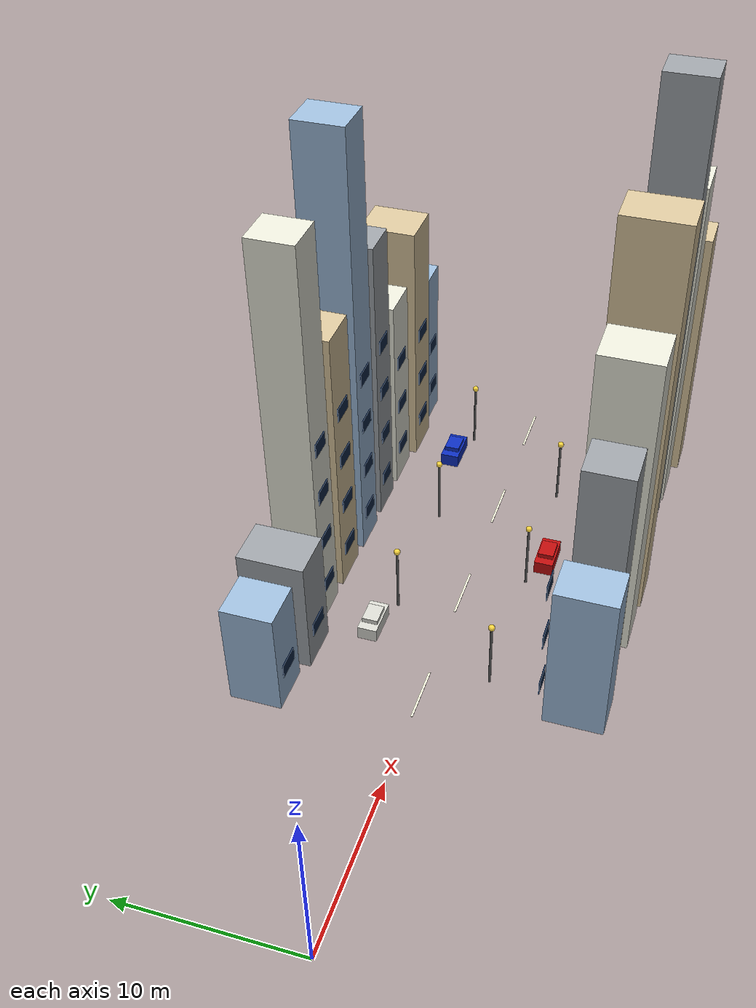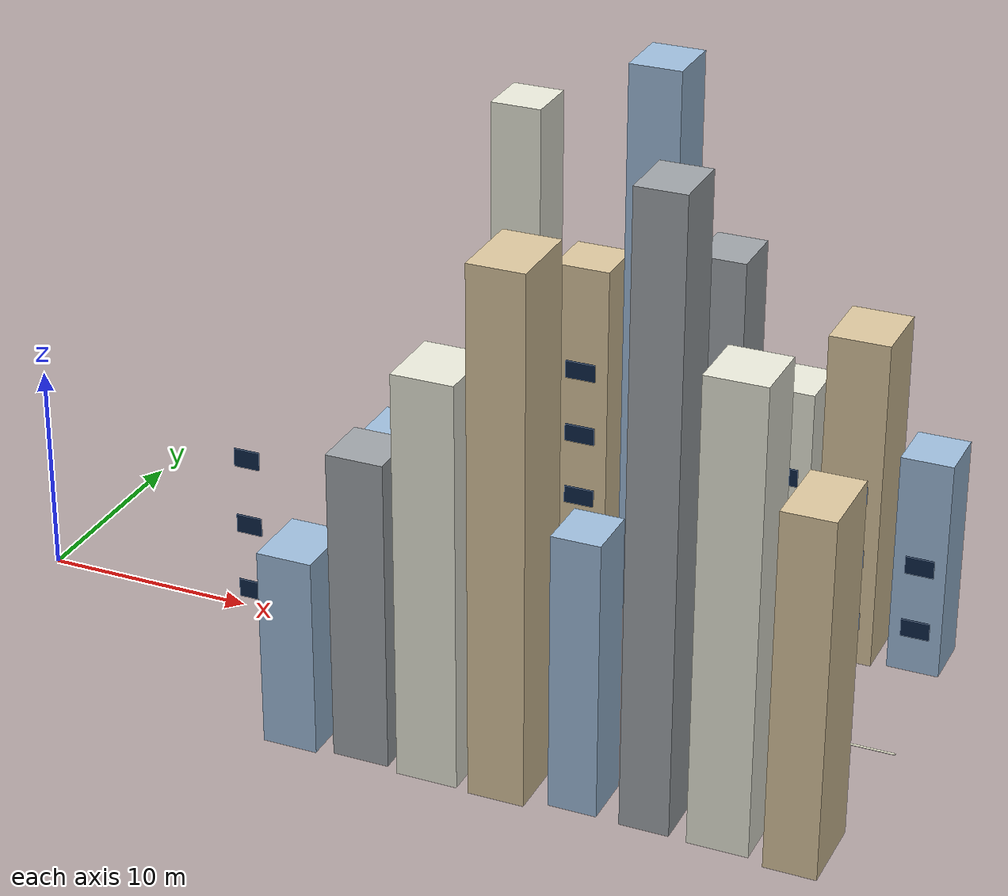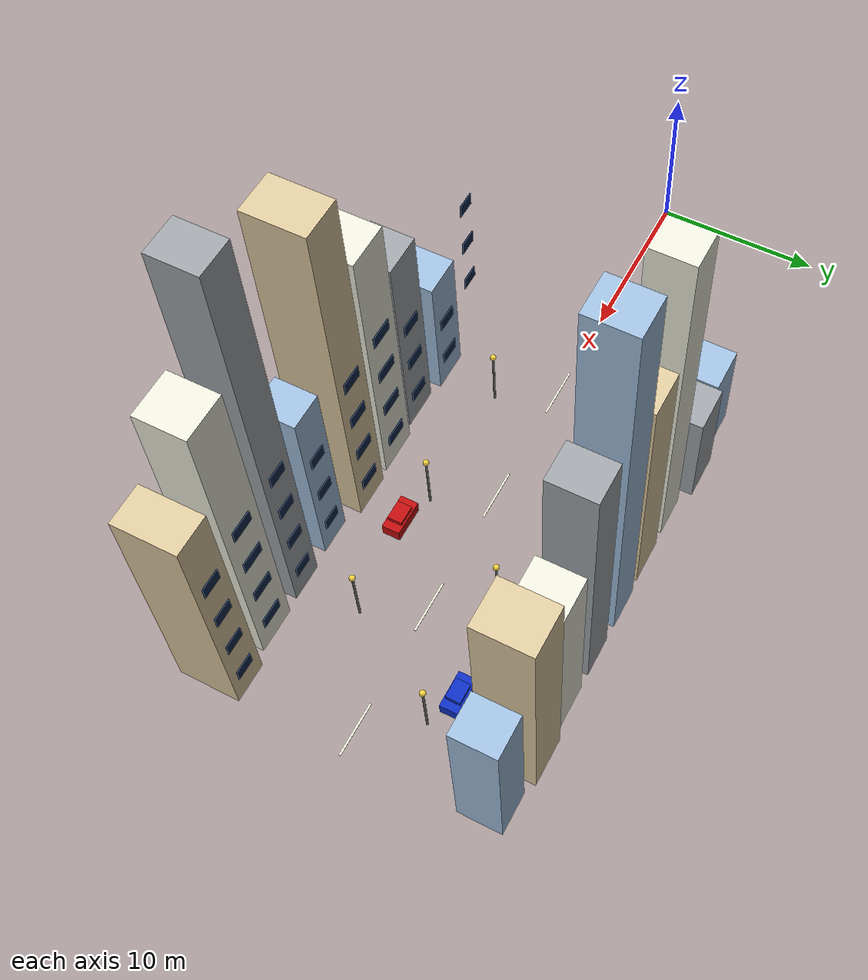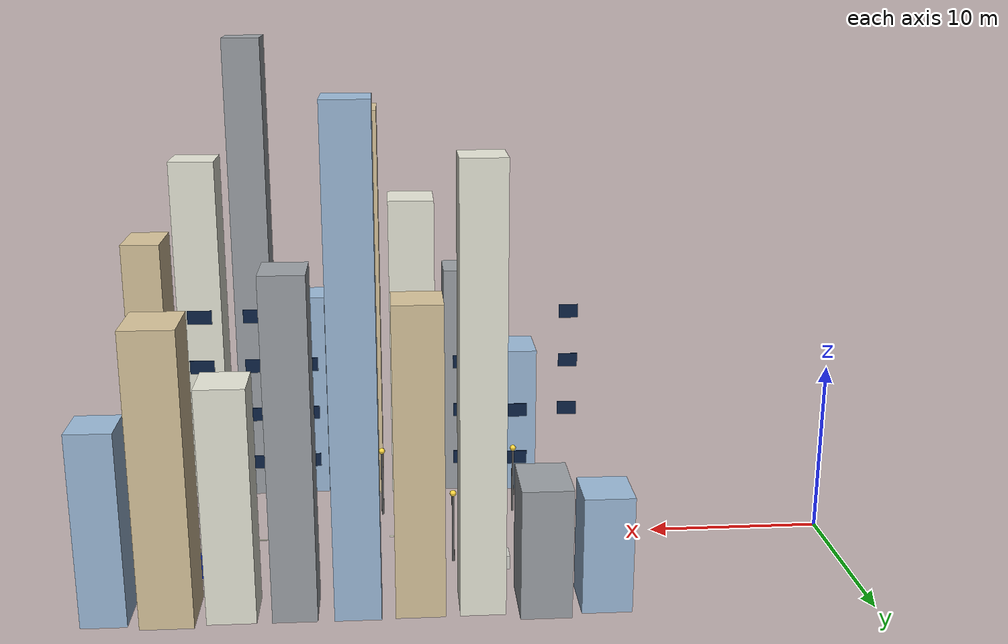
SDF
<sdf version="1.7">
 <world name="urban_street">
  <model name="white_lane_marking_07">
   <static>1</static>
   <pose>16 0 0.055 0 -0 0</pose>
   <link name="link">
    <collision name="collision"><geometry><box><size>3.2 0.12 0.02</size></box></geometry></collision>
    <visual name="visual">
     <geometry><box><size>3.2 0.12 0.02</size></box></geometry>
     <material>
      <ambient>0.95 0.95 0.85 1</ambient>
      <diffuse>0.95 0.95 0.85 1</diffuse>
      <specular>0.1 0.1 0.1 1</specular>
     </material>
    </visual>
   </link>
  </model>
  <model name="white_lane_marking_08">
   <static>1</static>
   <pose>24 0 0.055 0 -0 0</pose>
   <link name="link">
    <collision name="collision"><geometry><box><size>3.2 0.12 0.02</size></box></geometry></collision>
    <visual name="visual">
     <geometry><box><size>3.2 0.12 0.02</size></box></geometry>
     <material>
      <ambient>0.95 0.95 0.85 1</ambient>
      <diffuse>0.95 0.95 0.85 1</diffuse>
      <specular>0.1 0.1 0.1 1</specular>
     </material>
    </visual>
   </link>
  </model>
  <model name="white_lane_marking_09">
   <static>1</static>
   <pose>32 0 0.055 0 -0 0</pose>
   <link name="link">
    <collision name="collision"><geometry><box><size>3.2 0.12 0.02</size></box></geometry></collision>
    <visual name="visual">
     <geometry><box><size>3.2 0.12 0.02</size></box></geometry>
     <material>
      <ambient>0.95 0.95 0.85 1</ambient>
      <diffuse>0.95 0.95 0.85 1</diffuse>
      <specular>0.1 0.1 0.1 1</specular>
     </material>
    </visual>
   </link>
  </model>
  <model name="white_lane_marking_10">
   <static>1</static>
   <pose>40 0 0.055 0 -0 0</pose>
   <link name="link">
    <collision name="collision"><geometry><box><size>3.2 0.12 0.02</size></box></geometry></collision>
    <visual name="visual">
     <geometry><box><size>3.2 0.12 0.02</size></box></geometry>
     <material>
      <ambient>0.95 0.95 0.85 1</ambient>
      <diffuse>0.95 0.95 0.85 1</diffuse>
      <specular>0.1 0.1 0.1 1</specular>
     </material>
    </visual>
   </link>
  </model>
  <model name="building_facade_18_window_1">
   <static>1</static>
   <pose>14.25 -6.75 5.4 0 -0 0</pose>
   <link name="link">
    <collision name="collision"><geometry><box><size>1.19 0.05 0.85</size></box></geometry></collision>
    <visual name="visual">
     <geometry><box><size>1.19 0.05 0.85</size></box></geometry>
     <material>
      <ambient>0.05 0.14 0.28 1</ambient>
      <diffuse>0.05 0.14 0.28 1</diffuse>
      <specular>0.1 0.1 0.1 1</specular>
     </material>
    </visual>
   </link>
  </model>
  <model name="building_facade_18_window_2">
   <static>1</static>
   <pose>14.25 -6.75 8.6 0 -0 0</pose>
   <link name="link">
    <collision name="collision"><geometry><box><size>1.19 0.05 0.85</size></box></geometry></collision>
    <visual name="visual">
     <geometry><box><size>1.19 0.05 0.85</size></box></geometry>
     <material>
      <ambient>0.05 0.14 0.28 1</ambient>
      <diffuse>0.05 0.14 0.28 1</diffuse>
      <specular>0.1 0.1 0.1 1</specular>
     </material>
    </visual>
   </link>
  </model>
  <model name="building_facade_18_window_3">
   <static>1</static>
   <pose>14.25 -6.75 11.8 0 -0 0</pose>
   <link name="link">
    <collision name="collision"><geometry><box><size>1.19 0.05 0.85</size></box></geometry></collision>
    <visual name="visual">
     <geometry><box><size>1.19 0.05 0.85</size></box></geometry>
     <material>
      <ambient>0.05 0.14 0.28 1</ambient>
      <diffuse>0.05 0.14 0.28 1</diffuse>
      <specular>0.1 0.1 0.1 1</specular>
     </material>
    </visual>
   </link>
  </model>
  <model name="building_facade_19">
   <static>1</static>
   <pose>17.5 -8.2 4.64 0 -0 0</pose>
   <link name="link">
    <collision name="collision"><geometry><box><size>2.52 3.29 9.28</size></box></geometry></collision>
    <visual name="visual">
     <geometry><box><size>2.52 3.29 9.28</size></box></geometry>
     <material>
      <ambient>0.62 0.74 0.86 1</ambient>
      <diffuse>0.62 0.74 0.86 1</diffuse>
      <specular>0.1 0.1 0.1 1</specular>
     </material>
    </visual>
   </link>
  </model>
  <model name="building_facade_19_window_0">
   <static>1</static>
   <pose>17.5 -6.52 2.2 0 -0 0</pose>
   <link name="link">
    <collision name="collision"><geometry><box><size>1.39 0.05 0.85</size></box></geometry></collision>
    <visual name="visual">
     <geometry><box><size>1.39 0.05 0.85</size></box></geometry>
     <material>
      <ambient>0.05 0.14 0.28 1</ambient>
      <diffuse>0.05 0.14 0.28 1</diffuse>
      <specular>0.1 0.1 0.1 1</specular>
     </material>
    </visual>
   </link>
  </model>
  <model name="building_facade_19_window_1">
   <static>1</static>
   <pose>17.5 -6.52 5.4 0 -0 0</pose>
   <link name="link">
    <collision name="collision"><geometry><box><size>1.39 0.05 0.85</size></box></geometry></collision>
    <visual name="visual">
     <geometry><box><size>1.39 0.05 0.85</size></box></geometry>
     <material>
      <ambient>0.05 0.14 0.28 1</ambient>
      <diffuse>0.05 0.14 0.28 1</diffuse>
      <specular>0.1 0.1 0.1 1</specular>
     </material>
    </visual>
   </link>
  </model>
  <model name="building_facade_20">
   <static>1</static>
   <pose>20.75 -8.2 7.24 0 -0 0</pose>
   <link name="link">
    <collision name="collision"><geometry><box><size>2.58 2.71 14.49</size></box></geometry></collision>
    <visual name="visual">
     <geometry><box><size>2.58 2.71 14.49</size></box></geometry>
     <material>
      <ambient>0.62 0.64 0.66 1</ambient>
      <diffuse>0.62 0.64 0.66 1</diffuse>
      <specular>0.1 0.1 0.1 1</specular>
     </material>
    </visual>
   </link>
  </model>
  <model name="building_facade_20_window_0">
   <static>1</static>
   <pose>20.75 -6.81 2.2 0 -0 0</pose>
   <link name="link">
    <collision name="collision"><geometry><box><size>1.42 0.05 0.85</size></box></geometry></collision>
    <visual name="visual">
     <geometry><box><size>1.42 0.05 0.85</size></box></geometry>
     <material>
      <ambient>0.05 0.14 0.28 1</ambient>
      <diffuse>0.05 0.14 0.28 1</diffuse>
      <specular>0.1 0.1 0.1 1</specular>
     </material>
    </visual>
   </link>
  </model>
  <model name="building_facade_20_window_1">
   <static>1</static>
   <pose>20.75 -6.81 5.4 0 -0 0</pose>
   <link name="link">
    <collision name="collision"><geometry><box><size>1.42 0.05 0.85</size></box></geometry></collision>
    <visual name="visual">
     <geometry><box><size>1.42 0.05 0.85</size></box></geometry>
     <material>
      <ambient>0.05 0.14 0.28 1</ambient>
      <diffuse>0.05 0.14 0.28 1</diffuse>
      <specular>0.1 0.1 0.1 1</specular>
     </material>
    </visual>
   </link>
  </model>
  <model name="building_facade_20_window_2">
   <static>1</static>
   <pose>20.75 -6.81 8.6 0 -0 0</pose>
   <link name="link">
    <collision name="collision"><geometry><box><size>1.42 0.05 0.85</size></box></geometry></collision>
    <visual name="visual">
     <geometry><box><size>1.42 0.05 0.85</size></box></geometry>
     <material>
      <ambient>0.05 0.14 0.28 1</ambient>
      <diffuse>0.05 0.14 0.28 1</diffuse>
      <specular>0.1 0.1 0.1 1</specular>
     </material>
    </visual>
   </link>
  </model>
  <model name="building_facade_21">
   <static>1</static>
   <pose>24 -8.2 9.46 0 -0 0</pose>
   <link name="link">
    <collision name="collision"><geometry><box><size>2.79 3.33 18.92</size></box></geometry></collision>
    <visual name="visual">
     <geometry><box><size>2.79 3.33 18.92</size></box></geometry>
     <material>
      <ambient>0.92 0.92 0.86 1</ambient>
      <diffuse>0.92 0.92 0.86 1</diffuse>
      <specular>0.1 0.1 0.1 1</specular>
     </material>
    </visual>
   </link>
  </model>
  <model name="building_facade_21_window_0">
   <static>1</static>
   <pose>24 -6.5 2.2 0 -0 0</pose>
   <link name="link">
    <collision name="collision"><geometry><box><size>1.54 0.05 0.85</size></box></geometry></collision>
    <visual name="visual">
     <geometry><box><size>1.54 0.05 0.85</size></box></geometry>
     <material>
      <ambient>0.05 0.14 0.28 1</ambient>
      <diffuse>0.05 0.14 0.28 1</diffuse>
      <specular>0.1 0.1 0.1 1</specular>
     </material>
    </visual>
   </link>
  </model>
  <model name="building_facade_21_window_1">
   <static>1</static>
   <pose>24 -6.5 5.4 0 -0 0</pose>
   <link name="link">
    <collision name="collision"><geometry><box><size>1.54 0.05 0.85</size></box></geometry></collision>
    <visual name="visual">
     <geometry><box><size>1.54 0.05 0.85</size></box></geometry>
     <material>
      <ambient>0.05 0.14 0.28 1</ambient>
      <diffuse>0.05 0.14 0.28 1</diffuse>
      <specular>0.1 0.1 0.1 1</specular>
     </material>
    </visual>
   </link>
  </model>
  <model name="building_facade_21_window_2">
   <static>1</static>
   <pose>24 -6.5 8.6 0 -0 0</pose>
   <link name="link">
    <collision name="collision"><geometry><box><size>1.54 0.05 0.85</size></box></geometry></collision>
    <visual name="visual">
     <geometry><box><size>1.54 0.05 0.85</size></box></geometry>
     <material>
      <ambient>0.05 0.14 0.28 1</ambient>
      <diffuse>0.05 0.14 0.28 1</diffuse>
      <specular>0.1 0.1 0.1 1</specular>
     </material>
    </visual>
   </link>
  </model>
  <model name="building_facade_21_window_3">
   <static>1</static>
   <pose>24 -6.5 11.8 0 -0 0</pose>
   <link name="link">
    <collision name="collision"><geometry><box><size>1.54 0.05 0.85</size></box></geometry></collision>
    <visual name="visual">
     <geometry><box><size>1.54 0.05 0.85</size></box></geometry>
     <material>
      <ambient>0.05 0.14 0.28 1</ambient>
      <diffuse>0.05 0.14 0.28 1</diffuse>
      <specular>0.1 0.1 0.1 1</specular>
     </material>
    </visual>
   </link>
  </model>
  <model name="building_facade_22">
   <static>1</static>
   <pose>27.25 -8.2 12.2 0 -0 0</pose>
   <link name="link">
    <collision name="collision"><geometry><box><size>2.55 3.6 24.4</size></box></geometry></collision>
    <visual name="visual">
     <geometry><box><size>2.55 3.6 24.4</size></box></geometry>
     <material>
      <ambient>0.86 0.78 0.62 1</ambient>
      <diffuse>0.86 0.78 0.62 1</diffuse>
      <specular>0.1 0.1 0.1 1</specular>
     </material>
    </visual>
   </link>
  </model>
  <model name="building_facade_22_window_0">
   <static>1</static>
   <pose>27.25 -6.37 2.2 0 -0 0</pose>
   <link name="link">
    <collision name="collision"><geometry><box><size>1.4 0.05 0.85</size></box></geometry></collision>
    <visual name="visual">
     <geometry><box><size>1.4 0.05 0.85</size></box></geometry>
     <material>
      <ambient>0.05 0.14 0.28 1</ambient>
      <diffuse>0.05 0.14 0.28 1</diffuse>
      <specular>0.1 0.1 0.1 1</specular>
     </material>
    </visual>
   </link>
  </model>
  <model name="building_facade_22_window_1">
   <static>1</static>
   <pose>27.25 -6.37 5.4 0 -0 0</pose>
   <link name="link">
    <collision name="collision"><geometry><box><size>1.4 0.05 0.85</size></box></geometry></collision>
    <visual name="visual">
     <geometry><box><size>1.4 0.05 0.85</size></box></geometry>
     <material>
      <ambient>0.05 0.14 0.28 1</ambient>
      <diffuse>0.05 0.14 0.28 1</diffuse>
      <specular>0.1 0.1 0.1 1</specular>
     </material>
    </visual>
   </link>
  </model>
  <model name="building_facade_22_window_2">
   <static>1</static>
   <pose>27.25 -6.37 8.6 0 -0 0</pose>
   <link name="link">
    <collision name="collision"><geometry><box><size>1.4 0.05 0.85</size></box></geometry></collision>
    <visual name="visual">
     <geometry><box><size>1.4 0.05 0.85</size></box></geometry>
     <material>
      <ambient>0.05 0.14 0.28 1</ambient>
      <diffuse>0.05 0.14 0.28 1</diffuse>
      <specular>0.1 0.1 0.1 1</specular>
     </material>
    </visual>
   </link>
  </model>
  <model name="building_facade_22_window_3">
   <static>1</static>
   <pose>27.25 -6.37 11.8 0 -0 0</pose>
   <link name="link">
    <collision name="collision"><geometry><box><size>1.4 0.05 0.85</size></box></geometry></collision>
    <visual name="visual">
     <geometry><box><size>1.4 0.05 0.85</size></box></geometry>
     <material>
      <ambient>0.05 0.14 0.28 1</ambient>
      <diffuse>0.05 0.14 0.28 1</diffuse>
      <specular>0.1 0.1 0.1 1</specular>
     </material>
    </visual>
   </link>
  </model>
  <model name="building_facade_23">
   <static>1</static>
   <pose>30.5 -8.2 6.44 0 -0 0</pose>
   <link name="link">
    <collision name="collision"><geometry><box><size>2.18 2.54 12.89</size></box></geometry></collision>
    <visual name="visual">
     <geometry><box><size>2.18 2.54 12.89</size></box></geometry>
     <material>
      <ambient>0.62 0.74 0.86 1</ambient>
      <diffuse>0.62 0.74 0.86 1</diffuse>
      <specular>0.1 0.1 0.1 1</specular>
     </material>
    </visual>
   </link>
  </model>
  <model name="building_facade_23_window_0">
   <static>1</static>
   <pose>30.5 -6.9 2.2 0 -0 0</pose>
   <link name="link">
    <collision name="collision"><geometry><box><size>1.2 0.05 0.85</size></box></geometry></collision>
    <visual name="visual">
     <geometry><box><size>1.2 0.05 0.85</size></box></geometry>
     <material>
      <ambient>0.05 0.14 0.28 1</ambient>
      <diffuse>0.05 0.14 0.28 1</diffuse>
      <specular>0.1 0.1 0.1 1</specular>
     </material>
    </visual>
   </link>
  </model>
  <model name="building_facade_23_window_1">
   <static>1</static>
   <pose>30.5 -6.9 5.4 0 -0 0</pose>
   <link name="link">
    <collision name="collision"><geometry><box><size>1.2 0.05 0.85</size></box></geometry></collision>
    <visual name="visual">
     <geometry><box><size>1.2 0.05 0.85</size></box></geometry>
     <material>
      <ambient>0.05 0.14 0.28 1</ambient>
      <diffuse>0.05 0.14 0.28 1</diffuse>
      <specular>0.1 0.1 0.1 1</specular>
     </material>
    </visual>
   </link>
  </model>
  <model name="building_facade_23_window_2">
   <static>1</static>
   <pose>30.5 -6.9 8.6 0 -0 0</pose>
   <link name="link">
    <collision name="collision"><geometry><box><size>1.2 0.05 0.85</size></box></geometry></collision>
    <visual name="visual">
     <geometry><box><size>1.2 0.05 0.85</size></box></geometry>
     <material>
      <ambient>0.05 0.14 0.28 1</ambient>
      <diffuse>0.05 0.14 0.28 1</diffuse>
      <specular>0.1 0.1 0.1 1</specular>
     </material>
    </visual>
   </link>
  </model>
  <model name="building_facade_24">
   <static>1</static>
   <pose>33.75 -8.2 14.29 0 -0 0</pose>
   <link name="link">
    <collision name="collision"><geometry><box><size>2.21 2.77 28.57</size></box></geometry></collision>
    <visual name="visual">
     <geometry><box><size>2.21 2.77 28.57</size></box></geometry>
     <material>
      <ambient>0.62 0.64 0.66 1</ambient>
      <diffuse>0.62 0.64 0.66 1</diffuse>
      <specular>0.1 0.1 0.1 1</specular>
     </material>
    </visual>
   </link>
  </model>
  <model name="building_facade_24_window_0">
   <static>1</static>
   <pose>33.75 -6.78 2.2 0 -0 0</pose>
   <link name="link">
    <collision name="collision"><geometry><box><size>1.22 0.05 0.85</size></box></geometry></collision>
    <visual name="visual">
     <geometry><box><size>1.22 0.05 0.85</size></box></geometry>
     <material>
      <ambient>0.05 0.14 0.28 1</ambient>
      <diffuse>0.05 0.14 0.28 1</diffuse>
      <specular>0.1 0.1 0.1 1</specular>
     </material>
    </visual>
   </link>
  </model>
  <model name="building_facade_24_window_1">
   <static>1</static>
   <pose>33.75 -6.78 5.4 0 -0 0</pose>
   <link name="link">
    <collision name="collision"><geometry><box><size>1.22 0.05 0.85</size></box></geometry></collision>
    <visual name="visual">
     <geometry><box><size>1.22 0.05 0.85</size></box></geometry>
     <material>
      <ambient>0.05 0.14 0.28 1</ambient>
      <diffuse>0.05 0.14 0.28 1</diffuse>
      <specular>0.1 0.1 0.1 1</specular>
     </material>
    </visual>
   </link>
  </model>
  <model name="building_facade_24_window_2">
   <static>1</static>
   <pose>33.75 -6.78 8.6 0 -0 0</pose>
   <link name="link">
    <collision name="collision"><geometry><box><size>1.22 0.05 0.85</size></box></geometry></collision>
    <visual name="visual">
     <geometry><box><size>1.22 0.05 0.85</size></box></geometry>
     <material>
      <ambient>0.05 0.14 0.28 1</ambient>
      <diffuse>0.05 0.14 0.28 1</diffuse>
      <specular>0.1 0.1 0.1 1</specular>
     </material>
    </visual>
   </link>
  </model>
  <model name="building_facade_24_window_3">
   <static>1</static>
   <pose>33.75 -6.78 11.8 0 -0 0</pose>
   <link name="link">
    <collision name="collision"><geometry><box><size>1.22 0.05 0.85</size></box></geometry></collision>
    <visual name="visual">
     <geometry><box><size>1.22 0.05 0.85</size></box></geometry>
     <material>
      <ambient>0.05 0.14 0.28 1</ambient>
      <diffuse>0.05 0.14 0.28 1</diffuse>
      <specular>0.1 0.1 0.1 1</specular>
     </material>
    </visual>
   </link>
  </model>
  <model name="building_facade_25">
   <static>1</static>
   <pose>37 -8.2 10.69 0 -0 0</pose>
   <link name="link">
    <collision name="collision"><geometry><box><size>2.7 2.91 21.39</size></box></geometry></collision>
    <visual name="visual">
     <geometry><box><size>2.7 2.91 21.39</size></box></geometry>
     <material>
      <ambient>0.92 0.92 0.86 1</ambient>
      <diffuse>0.92 0.92 0.86 1</diffuse>
      <specular>0.1 0.1 0.1 1</specular>
     </material>
    </visual>
   </link>
  </model>
  <model name="building_facade_25_window_0">
   <static>1</static>
   <pose>37 -6.72 2.2 0 -0 0</pose>
   <link name="link">
    <collision name="collision"><geometry><box><size>1.49 0.05 0.85</size></box></geometry></collision>
    <visual name="visual">
     <geometry><box><size>1.49 0.05 0.85</size></box></geometry>
     <material>
      <ambient>0.05 0.14 0.28 1</ambient>
      <diffuse>0.05 0.14 0.28 1</diffuse>
      <specular>0.1 0.1 0.1 1</specular>
     </material>
    </visual>
   </link>
  </model>
  <model name="building_facade_25_window_1">
   <static>1</static>
   <pose>37 -6.72 5.4 0 -0 0</pose>
   <link name="link">
    <collision name="collision"><geometry><box><size>1.49 0.05 0.85</size></box></geometry></collision>
    <visual name="visual">
     <geometry><box><size>1.49 0.05 0.85</size></box></geometry>
     <material>
      <ambient>0.05 0.14 0.28 1</ambient>
      <diffuse>0.05 0.14 0.28 1</diffuse>
      <specular>0.1 0.1 0.1 1</specular>
     </material>
    </visual>
   </link>
  </model>
  <model name="building_facade_25_window_2">
   <static>1</static>
   <pose>37 -6.72 8.6 0 -0 0</pose>
   <link name="link">
    <collision name="collision"><geometry><box><size>1.49 0.05 0.85</size></box></geometry></collision>
    <visual name="visual">
     <geometry><box><size>1.49 0.05 0.85</size></box></geometry>
     <material>
      <ambient>0.05 0.14 0.28 1</ambient>
      <diffuse>0.05 0.14 0.28 1</diffuse>
      <specular>0.1 0.1 0.1 1</specular>
     </material>
    </visual>
   </link>
  </model>
  <model name="building_facade_25_window_3">
   <static>1</static>
   <pose>37 -6.72 11.8 0 -0 0</pose>
   <link name="link">
    <collision name="collision"><geometry><box><size>1.49 0.05 0.85</size></box></geometry></collision>
    <visual name="visual">
     <geometry><box><size>1.49 0.05 0.85</size></box></geometry>
     <material>
      <ambient>0.05 0.14 0.28 1</ambient>
      <diffuse>0.05 0.14 0.28 1</diffuse>
      <specular>0.1 0.1 0.1 1</specular>
     </material>
    </visual>
   </link>
  </model>
  <model name="building_facade_26">
   <static>1</static>
   <pose>40.25 -8.2 8.24 0 -0 0</pose>
   <link name="link">
    <collision name="collision"><geometry><box><size>2.32 3.69 16.47</size></box></geometry></collision>
    <visual name="visual">
     <geometry><box><size>2.32 3.69 16.47</size></box></geometry>
     <material>
      <ambient>0.86 0.78 0.62 1</ambient>
      <diffuse>0.86 0.78 0.62 1</diffuse>
      <specular>0.1 0.1 0.1 1</specular>
     </material>
    </visual>
   </link>
  </model>
  <model name="building_facade_26_window_0">
   <static>1</static>
   <pose>40.25 -6.33 2.2 0 -0 0</pose>
   <link name="link">
    <collision name="collision"><geometry><box><size>1.27 0.05 0.85</size></box></geometry></collision>
    <visual name="visual">
     <geometry><box><size>1.27 0.05 0.85</size></box></geometry>
     <material>
      <ambient>0.05 0.14 0.28 1</ambient>
      <diffuse>0.05 0.14 0.28 1</diffuse>
      <specular>0.1 0.1 0.1 1</specular>
     </material>
    </visual>
   </link>
  </model>
  <model name="building_facade_26_window_1">
   <static>1</static>
   <pose>40.25 -6.33 5.4 0 -0 0</pose>
   <link name="link">
    <collision name="collision"><geometry><box><size>1.27 0.05 0.85</size></box></geometry></collision>
    <visual name="visual">
     <geometry><box><size>1.27 0.05 0.85</size></box></geometry>
     <material>
      <ambient>0.05 0.14 0.28 1</ambient>
      <diffuse>0.05 0.14 0.28 1</diffuse>
      <specular>0.1 0.1 0.1 1</specular>
     </material>
    </visual>
   </link>
  </model>
  <model name="building_facade_26_window_2">
   <static>1</static>
   <pose>40.25 -6.33 8.6 0 -0 0</pose>
   <link name="link">
    <collision name="collision"><geometry><box><size>1.27 0.05 0.85</size></box></geometry></collision>
    <visual name="visual">
     <geometry><box><size>1.27 0.05 0.85</size></box></geometry>
     <material>
      <ambient>0.05 0.14 0.28 1</ambient>
      <diffuse>0.05 0.14 0.28 1</diffuse>
      <specular>0.1 0.1 0.1 1</specular>
     </material>
    </visual>
   </link>
  </model>
  <model name="building_facade_26_window_3">
   <static>1</static>
   <pose>40.25 -6.33 11.8 0 -0 0</pose>
   <link name="link">
    <collision name="collision"><geometry><box><size>1.27 0.05 0.85</size></box></geometry></collision>
    <visual name="visual">
     <geometry><box><size>1.27 0.05 0.85</size></box></geometry>
     <material>
      <ambient>0.05 0.14 0.28 1</ambient>
      <diffuse>0.05 0.14 0.28 1</diffuse>
      <specular>0.1 0.1 0.1 1</specular>
     </material>
    </visual>
   </link>
  </model>
  <model name="building_facade_44">
   <static>1</static>
   <pose>14.25 8.2 3.22 0 -0 0</pose>
   <link name="link">
    <collision name="collision"><geometry><box><size>2.67 2.9 6.45</size></box></geometry></collision>
    <visual name="visual">
     <geometry><box><size>2.67 2.9 6.45</size></box></geometry>
     <material>
      <ambient>0.62 0.74 0.86 1</ambient>
      <diffuse>0.62 0.74 0.86 1</diffuse>
      <specular>0.1 0.1 0.1 1</specular>
     </material>
    </visual>
   </link>
  </model>
  <model name="building_facade_44_window_0">
   <static>1</static>
   <pose>14.25 6.72 2.2 0 -0 0</pose>
   <link name="link">
    <collision name="collision"><geometry><box><size>1.47 0.05 0.85</size></box></geometry></collision>
    <visual name="visual">
     <geometry><box><size>1.47 0.05 0.85</size></box></geometry>
     <material>
      <ambient>0.05 0.14 0.28 1</ambient>
      <diffuse>0.05 0.14 0.28 1</diffuse>
      <specular>0.1 0.1 0.1 1</specular>
     </material>
    </visual>
   </link>
  </model>
  <model name="building_facade_45">
   <static>1</static>
   <pose>17.5 8.2 3.57 0 -0 0</pose>
   <link name="link">
    <collision name="collision"><geometry><box><size>2.7 3.73 7.14</size></box></geometry></collision>
    <visual name="visual">
     <geometry><box><size>2.7 3.73 7.14</size></box></geometry>
     <material>
      <ambient>0.62 0.64 0.66 1</ambient>
      <diffuse>0.62 0.64 0.66 1</diffuse>
      <specular>0.1 0.1 0.1 1</specular>
     </material>
    </visual>
   </link>
  </model>
  <model name="building_facade_45_window_0">
   <static>1</static>
   <pose>17.5 6.3 2.2 0 -0 0</pose>
   <link name="link">
    <collision name="collision"><geometry><box><size>1.49 0.05 0.85</size></box></geometry></collision>
    <visual name="visual">
     <geometry><box><size>1.49 0.05 0.85</size></box></geometry>
     <material>
      <ambient>0.05 0.14 0.28 1</ambient>
      <diffuse>0.05 0.14 0.28 1</diffuse>
      <specular>0.1 0.1 0.1 1</specular>
     </material>
    </visual>
   </link>
  </model>
  <model name="building_facade_46">
   <static>1</static>
   <pose>20.75 8.2 12.01 0 -0 0</pose>
   <link name="link">
    <collision name="collision"><geometry><box><size>2.39 2.59 24.02</size></box></geometry></collision>
    <visual name="visual">
     <geometry><box><size>2.39 2.59 24.02</size></box></geometry>
     <material>
      <ambient>0.92 0.92 0.86 1</ambient>
      <diffuse>0.92 0.92 0.86 1</diffuse>
      <specular>0.1 0.1 0.1 1</specular>
     </material>
    </visual>
   </link>
  </model>
  <model name="building_facade_46_window_0">
   <static>1</static>
   <pose>20.75 6.88 2.2 0 -0 0</pose>
   <link name="link">
    <collision name="collision"><geometry><box><size>1.31 0.05 0.85</size></box></geometry></collision>
    <visual name="visual">
     <geometry><box><size>1.31 0.05 0.85</size></box></geometry>
     <material>
      <ambient>0.05 0.14 0.28 1</ambient>
      <diffuse>0.05 0.14 0.28 1</diffuse>
      <specular>0.1 0.1 0.1 1</specular>
     </material>
    </visual>
   </link>
  </model>
  <model name="building_facade_46_window_1">
   <static>1</static>
   <pose>20.75 6.88 5.4 0 -0 0</pose>
   <link name="link">
    <collision name="collision"><geometry><box><size>1.31 0.05 0.85</size></box></geometry></collision>
    <visual name="visual">
     <geometry><box><size>1.31 0.05 0.85</size></box></geometry>
     <material>
      <ambient>0.05 0.14 0.28 1</ambient>
      <diffuse>0.05 0.14 0.28 1</diffuse>
      <specular>0.1 0.1 0.1 1</specular>
     </material>
    </visual>
   </link>
  </model>
  <model name="building_facade_46_window_2">
   <static>1</static>
   <pose>20.75 6.88 8.6 0 -0 0</pose>
   <link name="link">
    <collision name="collision"><geometry><box><size>1.31 0.05 0.85</size></box></geometry></collision>
    <visual name="visual">
     <geometry><box><size>1.31 0.05 0.85</size></box></geometry>
     <material>
      <ambient>0.05 0.14 0.28 1</ambient>
      <diffuse>0.05 0.14 0.28 1</diffuse>
      <specular>0.1 0.1 0.1 1</specular>
     </material>
    </visual>
   </link>
  </model>
  <model name="building_facade_46_window_3">
   <static>1</static>
   <pose>20.75 6.88 11.8 0 -0 0</pose>
   <link name="link">
    <collision name="collision"><geometry><box><size>1.31 0.05 0.85</size></box></geometry></collision>
    <visual name="visual">
     <geometry><box><size>1.31 0.05 0.85</size></box></geometry>
     <material>
      <ambient>0.05 0.14 0.28 1</ambient>
      <diffuse>0.05 0.14 0.28 1</diffuse>
      <specular>0.1 0.1 0.1 1</specular>
     </material>
    </visual>
   </link>
  </model>
  <model name="building_facade_47">
   <static>1</static>
   <pose>24 8.2 8.44 0 -0 0</pose>
   <link name="link">
    <collision name="collision"><geometry><box><size>2.61 2.67 16.88</size></box></geometry></collision>
    <visual name="visual">
     <geometry><box><size>2.61 2.67 16.88</size></box></geometry>
     <material>
      <ambient>0.86 0.78 0.62 1</ambient>
      <diffuse>0.86 0.78 0.62 1</diffuse>
      <specular>0.1 0.1 0.1 1</specular>
     </material>
    </visual>
   </link>
  </model>
  <model name="building_facade_47_window_0">
   <static>1</static>
   <pose>24 6.84 2.2 0 -0 0</pose>
   <link name="link">
    <collision name="collision"><geometry><box><size>1.44 0.05 0.85</size></box></geometry></collision>
    <visual name="visual">
     <geometry><box><size>1.44 0.05 0.85</size></box></geometry>
     <material>
      <ambient>0.05 0.14 0.28 1</ambient>
      <diffuse>0.05 0.14 0.28 1</diffuse>
      <specular>0.1 0.1 0.1 1</specular>
     </material>
    </visual>
   </link>
  </model>
  <model name="building_facade_47_window_1">
   <static>1</static>
   <pose>24 6.84 5.4 0 -0 0</pose>
   <link name="link">
    <collision name="collision"><geometry><box><size>1.44 0.05 0.85</size></box></geometry></collision>
    <visual name="visual">
     <geometry><box><size>1.44 0.05 0.85</size></box></geometry>
     <material>
      <ambient>0.05 0.14 0.28 1</ambient>
      <diffuse>0.05 0.14 0.28 1</diffuse>
      <specular>0.1 0.1 0.1 1</specular>
     </material>
    </visual>
   </link>
  </model>
  <model name="building_facade_47_window_2">
   <static>1</static>
   <pose>24 6.84 8.6 0 -0 0</pose>
   <link name="link">
    <collision name="collision"><geometry><box><size>1.44 0.05 0.85</size></box></geometry></collision>
    <visual name="visual">
     <geometry><box><size>1.44 0.05 0.85</size></box></geometry>
     <material>
      <ambient>0.05 0.14 0.28 1</ambient>
      <diffuse>0.05 0.14 0.28 1</diffuse>
      <specular>0.1 0.1 0.1 1</specular>
     </material>
    </visual>
   </link>
  </model>
  <model name="building_facade_47_window_3">
   <static>1</static>
   <pose>24 6.84 11.8 0 -0 0</pose>
   <link name="link">
    <collision name="collision"><geometry><box><size>1.44 0.05 0.85</size></box></geometry></collision>
    <visual name="visual">
     <geometry><box><size>1.44 0.05 0.85</size></box></geometry>
     <material>
      <ambient>0.05 0.14 0.28 1</ambient>
      <diffuse>0.05 0.14 0.28 1</diffuse>
      <specular>0.1 0.1 0.1 1</specular>
     </material>
    </visual>
   </link>
  </model>
  <model name="building_facade_48">
   <static>1</static>
   <pose>27.25 8.2 13.41 0 -0 0</pose>
   <link name="link">
    <collision name="collision"><geometry><box><size>2.44 2.84 26.81</size></box></geometry></collision>
    <visual name="visual">
     <geometry><box><size>2.44 2.84 26.81</size></box></geometry>
     <material>
      <ambient>0.62 0.74 0.86 1</ambient>
      <diffuse>0.62 0.74 0.86 1</diffuse>
      <specular>0.1 0.1 0.1 1</specular>
     </material>
    </visual>
   </link>
  </model>
  <model name="building_facade_48_window_0">
   <static>1</static>
   <pose>27.25 6.75 2.2 0 -0 0</pose>
   <link name="link">
    <collision name="collision"><geometry><box><size>1.34 0.05 0.85</size></box></geometry></collision>
    <visual name="visual">
     <geometry><box><size>1.34 0.05 0.85</size></box></geometry>
     <material>
      <ambient>0.05 0.14 0.28 1</ambient>
      <diffuse>0.05 0.14 0.28 1</diffuse>
      <specular>0.1 0.1 0.1 1</specular>
     </material>
    </visual>
   </link>
  </model>
  <model name="building_facade_48_window_1">
   <static>1</static>
   <pose>27.25 6.75 5.4 0 -0 0</pose>
   <link name="link">
    <collision name="collision"><geometry><box><size>1.34 0.05 0.85</size></box></geometry></collision>
    <visual name="visual">
     <geometry><box><size>1.34 0.05 0.85</size></box></geometry>
     <material>
      <ambient>0.05 0.14 0.28 1</ambient>
      <diffuse>0.05 0.14 0.28 1</diffuse>
      <specular>0.1 0.1 0.1 1</specular>
     </material>
    </visual>
   </link>
  </model>
  <model name="building_facade_48_window_2">
   <static>1</static>
   <pose>27.25 6.75 8.6 0 -0 0</pose>
   <link name="link">
    <collision name="collision"><geometry><box><size>1.34 0.05 0.85</size></box></geometry></collision>
    <visual name="visual">
     <geometry><box><size>1.34 0.05 0.85</size></box></geometry>
     <material>
      <ambient>0.05 0.14 0.28 1</ambient>
      <diffuse>0.05 0.14 0.28 1</diffuse>
      <specular>0.1 0.1 0.1 1</specular>
     </material>
    </visual>
   </link>
  </model>
  <model name="building_facade_48_window_3">
   <static>1</static>
   <pose>27.25 6.75 11.8 0 -0 0</pose>
   <link name="link">
    <collision name="collision"><geometry><box><size>1.34 0.05 0.85</size></box></geometry></collision>
    <visual name="visual">
     <geometry><box><size>1.34 0.05 0.85</size></box></geometry>
     <material>
      <ambient>0.05 0.14 0.28 1</ambient>
      <diffuse>0.05 0.14 0.28 1</diffuse>
      <specular>0.1 0.1 0.1 1</specular>
     </material>
    </visual>
   </link>
  </model>
  <model name="building_facade_49">
   <static>1</static>
   <pose>30.5 8.2 9.24 0 -0 0</pose>
   <link name="link">
    <collision name="collision"><geometry><box><size>2.34 2.78 18.48</size></box></geometry></collision>
    <visual name="visual">
     <geometry><box><size>2.34 2.78 18.48</size></box></geometry>
     <material>
      <ambient>0.62 0.64 0.66 1</ambient>
      <diffuse>0.62 0.64 0.66 1</diffuse>
      <specular>0.1 0.1 0.1 1</specular>
     </material>
    </visual>
   </link>
  </model>
  <model name="building_facade_49_window_0">
   <static>1</static>
   <pose>30.5 6.78 2.2 0 -0 0</pose>
   <link name="link">
    <collision name="collision"><geometry><box><size>1.29 0.05 0.85</size></box></geometry></collision>
    <visual name="visual">
     <geometry><box><size>1.29 0.05 0.85</size></box></geometry>
     <material>
      <ambient>0.05 0.14 0.28 1</ambient>
      <diffuse>0.05 0.14 0.28 1</diffuse>
      <specular>0.1 0.1 0.1 1</specular>
     </material>
    </visual>
   </link>
  </model>
  <model name="building_facade_49_window_1">
   <static>1</static>
   <pose>30.5 6.78 5.4 0 -0 0</pose>
   <link name="link">
    <collision name="collision"><geometry><box><size>1.29 0.05 0.85</size></box></geometry></collision>
    <visual name="visual">
     <geometry><box><size>1.29 0.05 0.85</size></box></geometry>
     <material>
      <ambient>0.05 0.14 0.28 1</ambient>
      <diffuse>0.05 0.14 0.28 1</diffuse>
      <specular>0.1 0.1 0.1 1</specular>
     </material>
    </visual>
   </link>
  </model>
  <model name="building_facade_49_window_2">
   <static>1</static>
   <pose>30.5 6.78 8.6 0 -0 0</pose>
   <link name="link">
    <collision name="collision"><geometry><box><size>1.29 0.05 0.85</size></box></geometry></collision>
    <visual name="visual">
     <geometry><box><size>1.29 0.05 0.85</size></box></geometry>
     <material>
      <ambient>0.05 0.14 0.28 1</ambient>
      <diffuse>0.05 0.14 0.28 1</diffuse>
      <specular>0.1 0.1 0.1 1</specular>
     </material>
    </visual>
   </link>
  </model>
  <model name="building_facade_49_window_3">
   <static>1</static>
   <pose>30.5 6.78 11.8 0 -0 0</pose>
   <link name="link">
    <collision name="collision"><geometry><box><size>1.29 0.05 0.85</size></box></geometry></collision>
    <visual name="visual">
     <geometry><box><size>1.29 0.05 0.85</size></box></geometry>
     <material>
      <ambient>0.05 0.14 0.28 1</ambient>
      <diffuse>0.05 0.14 0.28 1</diffuse>
      <specular>0.1 0.1 0.1 1</specular>
     </material>
    </visual>
   </link>
  </model>
  <model name="building_facade_50">
   <static>1</static>
   <pose>33.75 8.2 6.4 0 -0 0</pose>
   <link name="link">
    <collision name="collision"><geometry><box><size>2.58 2.76 12.79</size></box></geometry></collision>
    <visual name="visual">
     <geometry><box><size>2.58 2.76 12.79</size></box></geometry>
     <material>
      <ambient>0.92 0.92 0.86 1</ambient>
      <diffuse>0.92 0.92 0.86 1</diffuse>
      <specular>0.1 0.1 0.1 1</specular>
     </material>
    </visual>
   </link>
  </model>
  <model name="building_facade_50_window_0">
   <static>1</static>
   <pose>33.75 6.79 2.2 0 -0 0</pose>
   <link name="link">
    <collision name="collision"><geometry><box><size>1.42 0.05 0.85</size></box></geometry></collision>
    <visual name="visual">
     <geometry><box><size>1.42 0.05 0.85</size></box></geometry>
     <material>
      <ambient>0.05 0.14 0.28 1</ambient>
      <diffuse>0.05 0.14 0.28 1</diffuse>
      <specular>0.1 0.1 0.1 1</specular>
     </material>
    </visual>
   </link>
  </model>
  <model name="building_facade_50_window_1">
   <static>1</static>
   <pose>33.75 6.79 5.4 0 -0 0</pose>
   <link name="link">
    <collision name="collision"><geometry><box><size>1.42 0.05 0.85</size></box></geometry></collision>
    <visual name="visual">
     <geometry><box><size>1.42 0.05 0.85</size></box></geometry>
     <material>
      <ambient>0.05 0.14 0.28 1</ambient>
      <diffuse>0.05 0.14 0.28 1</diffuse>
      <specular>0.1 0.1 0.1 1</specular>
     </material>
    </visual>
   </link>
  </model>
  <model name="building_facade_50_window_2">
   <static>1</static>
   <pose>33.75 6.79 8.6 0 -0 0</pose>
   <link name="link">
    <collision name="collision"><geometry><box><size>1.42 0.05 0.85</size></box></geometry></collision>
    <visual name="visual">
     <geometry><box><size>1.42 0.05 0.85</size></box></geometry>
     <material>
      <ambient>0.05 0.14 0.28 1</ambient>
      <diffuse>0.05 0.14 0.28 1</diffuse>
      <specular>0.1 0.1 0.1 1</specular>
     </material>
    </visual>
   </link>
  </model>
  <model name="building_facade_51">
   <static>1</static>
   <pose>37 8.2 7.98 0 -0 0</pose>
   <link name="link">
    <collision name="collision"><geometry><box><size>2.8 3.34 15.95</size></box></geometry></collision>
    <visual name="visual">
     <geometry><box><size>2.8 3.34 15.95</size></box></geometry>
     <material>
      <ambient>0.86 0.78 0.62 1</ambient>
      <diffuse>0.86 0.78 0.62 1</diffuse>
      <specular>0.1 0.1 0.1 1</specular>
     </material>
    </visual>
   </link>
  </model>
  <model name="building_facade_51_window_0">
   <static>1</static>
   <pose>37 6.5 2.2 0 -0 0</pose>
   <link name="link">
    <collision name="collision"><geometry><box><size>1.54 0.05 0.85</size></box></geometry></collision>
    <visual name="visual">
     <geometry><box><size>1.54 0.05 0.85</size></box></geometry>
     <material>
      <ambient>0.05 0.14 0.28 1</ambient>
      <diffuse>0.05 0.14 0.28 1</diffuse>
      <specular>0.1 0.1 0.1 1</specular>
     </material>
    </visual>
   </link>
  </model>
  <model name="building_facade_51_window_1">
   <static>1</static>
   <pose>37 6.5 5.4 0 -0 0</pose>
   <link name="link">
    <collision name="collision"><geometry><box><size>1.54 0.05 0.85</size></box></geometry></collision>
    <visual name="visual">
     <geometry><box><size>1.54 0.05 0.85</size></box></geometry>
     <material>
      <ambient>0.05 0.14 0.28 1</ambient>
      <diffuse>0.05 0.14 0.28 1</diffuse>
      <specular>0.1 0.1 0.1 1</specular>
     </material>
    </visual>
   </link>
  </model>
  <model name="building_facade_51_window_2">
   <static>1</static>
   <pose>37 6.5 8.6 0 -0 0</pose>
   <link name="link">
    <collision name="collision"><geometry><box><size>1.54 0.05 0.85</size></box></geometry></collision>
    <visual name="visual">
     <geometry><box><size>1.54 0.05 0.85</size></box></geometry>
     <material>
      <ambient>0.05 0.14 0.28 1</ambient>
      <diffuse>0.05 0.14 0.28 1</diffuse>
      <specular>0.1 0.1 0.1 1</specular>
     </material>
    </visual>
   </link>
  </model>
  <model name="building_facade_52">
   <static>1</static>
   <pose>40.25 8.2 5.31 0 -0 0</pose>
   <link name="link">
    <collision name="collision"><geometry><box><size>2.41 2.66 10.62</size></box></geometry></collision>
    <visual name="visual">
     <geometry><box><size>2.41 2.66 10.62</size></box></geometry>
     <material>
      <ambient>0.62 0.74 0.86 1</ambient>
      <diffuse>0.62 0.74 0.86 1</diffuse>
      <specular>0.1 0.1 0.1 1</specular>
     </material>
    </visual>
   </link>
  </model>
  <model name="building_facade_52_window_0">
   <static>1</static>
   <pose>40.25 6.84 2.2 0 -0 0</pose>
   <link name="link">
    <collision name="collision"><geometry><box><size>1.33 0.05 0.85</size></box></geometry></collision>
    <visual name="visual">
     <geometry><box><size>1.33 0.05 0.85</size></box></geometry>
     <material>
      <ambient>0.05 0.14 0.28 1</ambient>
      <diffuse>0.05 0.14 0.28 1</diffuse>
      <specular>0.1 0.1 0.1 1</specular>
     </material>
    </visual>
   </link>
  </model>
  <model name="building_facade_52_window_1">
   <static>1</static>
   <pose>40.25 6.84 5.4 0 -0 0</pose>
   <link name="link">
    <collision name="collision"><geometry><box><size>1.33 0.05 0.85</size></box></geometry></collision>
    <visual name="visual">
     <geometry><box><size>1.33 0.05 0.85</size></box></geometry>
     <material>
      <ambient>0.05 0.14 0.28 1</ambient>
      <diffuse>0.05 0.14 0.28 1</diffuse>
      <specular>0.1 0.1 0.1 1</specular>
     </material>
    </visual>
   </link>
  </model>
  <model name="street_pole_14">
   <static>1</static>
   <pose>18 -3.25 2 0 -0 0</pose>
   <link name="link">
    <collision name="collision">
     <geometry><cylinder><radius>0.07</radius><length>4</length></cylinder></geometry>
    </collision>
    <visual name="visual">
     <geometry><cylinder><radius>0.07</radius><length>4</length></cylinder></geometry>
     <material>
      <ambient>0.35 0.35 0.35 1</ambient>
      <diffuse>0.35 0.35 0.35 1</diffuse>
      <specular>0.1 0.1 0.1 1</specular>
     </material>
    </visual>
   </link>
  </model>
  <model name="lamp_head_14">
   <static>1</static>
   <pose>18 -3.25 4.15 0 -0 0</pose>
   <link name="link">
    <visual name="visual">
     <geometry><sphere><radius>0.18</radius></sphere></geometry>
     <material>
      <ambient>1 0.85 0.25 1</ambient>
      <diffuse>1 0.85 0.25 1</diffuse>
      <specular>0.1 0.1 0.1 1</specular>
     </material>
    </visual>
   </link>
  </model>
  <model name="street_pole_15">
   <static>1</static>
   <pose>22 3.25 2 0 -0 0</pose>
   <link name="link">
    <collision name="collision">
     <geometry><cylinder><radius>0.07</radius><length>4</length></cylinder></geometry>
    </collision>
    <visual name="visual">
     <geometry><cylinder><radius>0.07</radius><length>4</length></cylinder></geometry>
     <material>
      <ambient>0.35 0.35 0.35 1</ambient>
      <diffuse>0.35 0.35 0.35 1</diffuse>
      <specular>0.1 0.1 0.1 1</specular>
     </material>
    </visual>
   </link>
  </model>
  <model name="lamp_head_15">
   <static>1</static>
   <pose>22 3.25 4.15 0 -0 0</pose>
   <link name="link">
    <visual name="visual">
     <geometry><sphere><radius>0.18</radius></sphere></geometry>
     <material>
      <ambient>1 0.85 0.25 1</ambient>
      <diffuse>1 0.85 0.25 1</diffuse>
      <specular>0.1 0.1 0.1 1</specular>
     </material>
    </visual>
   </link>
  </model>
  <model name="street_pole_16">
   <static>1</static>
   <pose>26 -3.25 2 0 -0 0</pose>
   <link name="link">
    <collision name="collision">
     <geometry><cylinder><radius>0.07</radius><length>4</length></cylinder></geometry>
    </collision>
    <visual name="visual">
     <geometry><cylinder><radius>0.07</radius><length>4</length></cylinder></geometry>
     <material>
      <ambient>0.35 0.35 0.35 1</ambient>
      <diffuse>0.35 0.35 0.35 1</diffuse>
      <specular>0.1 0.1 0.1 1</specular>
     </material>
    </visual>
   </link>
  </model>
  <model name="lamp_head_16">
   <static>1</static>
   <pose>26 -3.25 4.15 0 -0 0</pose>
   <link name="link">
    <visual name="visual">
     <geometry><sphere><radius>0.18</radius></sphere></geometry>
     <material>
      <ambient>1 0.85 0.25 1</ambient>
      <diffuse>1 0.85 0.25 1</diffuse>
      <specular>0.1 0.1 0.1 1</specular>
     </material>
    </visual>
   </link>
  </model>
  <model name="street_pole_17">
   <static>1</static>
   <pose>30 3.25 2 0 -0 0</pose>
   <link name="link">
    <collision name="collision">
     <geometry><cylinder><radius>0.07</radius><length>4</length></cylinder></geometry>
    </collision>
    <visual name="visual">
     <geometry><cylinder><radius>0.07</radius><length>4</length></cylinder></geometry>
     <material>
      <ambient>0.35 0.35 0.35 1</ambient>
      <diffuse>0.35 0.35 0.35 1</diffuse>
      <specular>0.1 0.1 0.1 1</specular>
     </material>
    </visual>
   </link>
  </model>
  <model name="lamp_head_17">
   <static>1</static>
   <pose>30 3.25 4.15 0 -0 0</pose>
   <link name="link">
    <visual name="visual">
     <geometry><sphere><radius>0.18</radius></sphere></geometry>
     <material>
      <ambient>1 0.85 0.25 1</ambient>
      <diffuse>1 0.85 0.25 1</diffuse>
      <specular>0.1 0.1 0.1 1</specular>
     </material>
    </visual>
   </link>
  </model>
  <model name="street_pole_18">
   <static>1</static>
   <pose>34 -3.25 2 0 -0 0</pose>
   <link name="link">
    <collision name="collision">
     <geometry><cylinder><radius>0.07</radius><length>4</length></cylinder></geometry>
    </collision>
    <visual name="visual">
     <geometry><cylinder><radius>0.07</radius><length>4</length></cylinder></geometry>
     <material>
      <ambient>0.35 0.35 0.35 1</ambient>
      <diffuse>0.35 0.35 0.35 1</diffuse>
      <specular>0.1 0.1 0.1 1</specular>
     </material>
    </visual>
   </link>
  </model>
  <model name="lamp_head_18">
   <static>1</static>
   <pose>34 -3.25 4.15 0 -0 0</pose>
   <link name="link">
    <visual name="visual">
     <geometry><sphere><radius>0.18</radius></sphere></geometry>
     <material>
      <ambient>1 0.85 0.25 1</ambient>
      <diffuse>1 0.85 0.25 1</diffuse>
      <specular>0.1 0.1 0.1 1</specular>
     </material>
    </visual>
   </link>
  </model>
  <model name="street_pole_19">
   <static>1</static>
   <pose>38 3.25 2 0 -0 0</pose>
   <link name="link">
    <collision name="collision">
     <geometry><cylinder><radius>0.07</radius><length>4</length></cylinder></geometry>
    </collision>
    <visual name="visual">
     <geometry><cylinder><radius>0.07</radius><length>4</length></cylinder></geometry>
     <material>
      <ambient>0.35 0.35 0.35 1</ambient>
      <diffuse>0.35 0.35 0.35 1</diffuse>
      <specular>0.1 0.1 0.1 1</specular>
     </material>
    </visual>
   </link>
  </model>
  <model name="lamp_head_19">
   <static>1</static>
   <pose>38 3.25 4.15 0 -0 0</pose>
   <link name="link">
    <visual name="visual">
     <geometry><sphere><radius>0.18</radius></sphere></geometry>
     <material>
      <ambient>1 0.85 0.25 1</ambient>
      <diffuse>1 0.85 0.25 1</diffuse>
      <specular>0.1 0.1 0.1 1</specular>
     </material>
    </visual>
   </link>
  </model>
  <model name="parked_vehicle_body_07">
   <static>1</static>
   <pose>20 4.05 0.45 0 -0 0</pose>
   <link name="link">
    <collision name="collision"><geometry><box><size>2.2 1.1 0.8</size></box></geometry></collision>
    <visual name="visual">
     <geometry><box><size>2.2 1.1 0.8</size></box></geometry>
     <material>
      <ambient>0.85 0.85 0.82 1</ambient>
      <diffuse>0.85 0.85 0.82 1</diffuse>
      <specular>0.1 0.1 0.1 1</specular>
     </material>
    </visual>
   </link>
  </model>
  <model name="parked_vehicle_roof_07">
   <static>1</static>
   <pose>20 4.05 0.95 0 -0 0</pose>
   <link name="link">
    <collision name="collision"><geometry><box><size>1.2 0.9 0.35</size></box></geometry></collision>
    <visual name="visual">
     <geometry><box><size>1.2 0.9 0.35</size></box></geometry>
     <material>
      <ambient>0.85 0.85 0.82 1</ambient>
      <diffuse>0.85 0.85 0.82 1</diffuse>
      <specular>0.1 0.1 0.1 1</specular>
     </material>
    </visual>
   </link>
  </model>
  <model name="parked_vehicle_body_08">
   <static>1</static>
   <pose>28 -4.05 0.45 0 -0 0</pose>
   <link name="link">
    <collision name="collision"><geometry><box><size>2.2 1.1 0.8</size></box></geometry></collision>
    <visual name="visual">
     <geometry><box><size>2.2 1.1 0.8</size></box></geometry>
     <material>
      <ambient>0.75 0.05 0.05 1</ambient>
      <diffuse>0.75 0.05 0.05 1</diffuse>
      <specular>0.1 0.1 0.1 1</specular>
     </material>
    </visual>
   </link>
  </model>
  <model name="parked_vehicle_roof_08">
   <static>1</static>
   <pose>28 -4.05 0.95 0 -0 0</pose>
   <link name="link">
    <collision name="collision"><geometry><box><size>1.2 0.9 0.35</size></box></geometry></collision>
    <visual name="visual">
     <geometry><box><size>1.2 0.9 0.35</size></box></geometry>
     <material>
      <ambient>0.75 0.05 0.05 1</ambient>
      <diffuse>0.75 0.05 0.05 1</diffuse>
      <specular>0.1 0.1 0.1 1</specular>
     </material>
    </visual>
   </link>
  </model>
  <model name="parked_vehicle_body_09">
   <static>1</static>
   <pose>36 4.05 0.45 0 -0 0</pose>
   <link name="link">
    <collision name="collision"><geometry><box><size>2.2 1.1 0.8</size></box></geometry></collision>
    <visual name="visual">
     <geometry><box><size>2.2 1.1 0.8</size></box></geometry>
     <material>
      <ambient>0.05 0.18 0.75 1</ambient>
      <diffuse>0.05 0.18 0.75 1</diffuse>
      <specular>0.1 0.1 0.1 1</specular>
     </material>
    </visual>
   </link>
  </model>
  <model name="parked_vehicle_roof_09">
   <static>1</static>
   <pose>36 4.05 0.95 0 -0 0</pose>
   <link name="link">
    <collision name="collision"><geometry><box><size>1.2 0.9 0.35</size></box></geometry></collision>
    <visual name="visual">
     <geometry><box><size>1.2 0.9 0.35</size></box></geometry>
     <material>
      <ambient>0.05 0.18 0.75 1</ambient>
      <diffuse>0.05 0.18 0.75 1</diffuse>
      <specular>0.1 0.1 0.1 1</specular>
     </material>
    </visual>
   </link>
  </model>
 </world>
</sdf>
